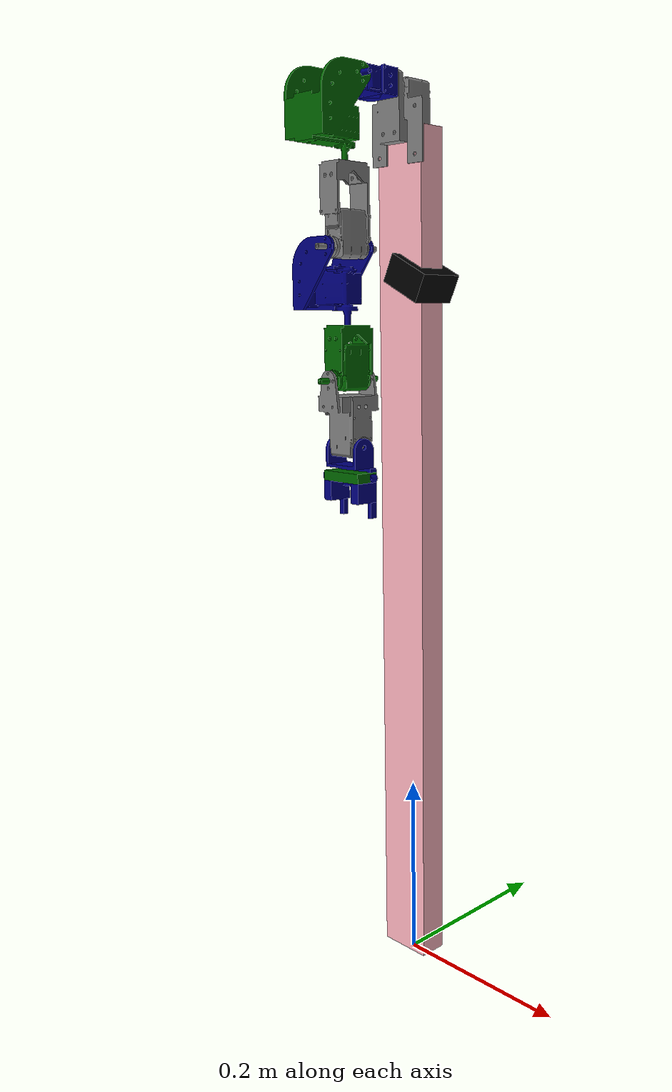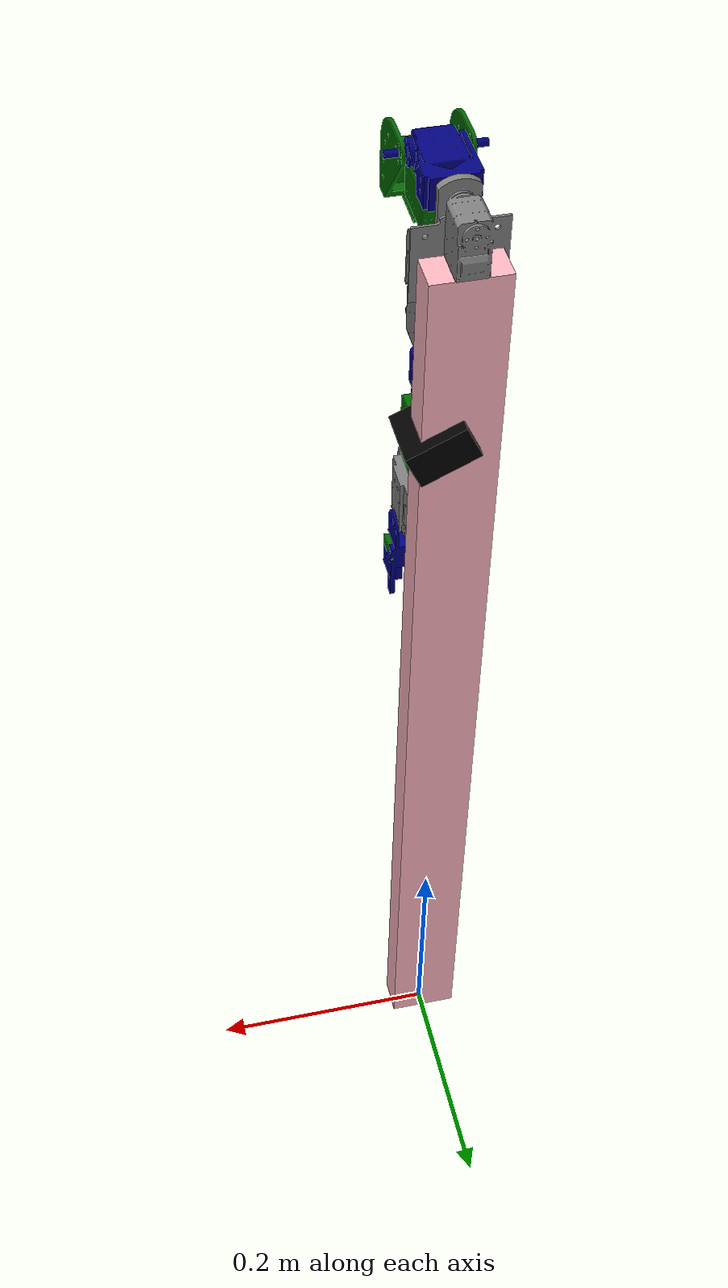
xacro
<?xml version="1.0" encoding="utf-8"?>

<robot
  name="poc_v2">

  <xacro:include filename="$(find poc_v2_arm)/urdf/camera_rgbd.xacro"/>

  <material name="grey">
      <color rgba="0.5 0.5 0.5 1" />
  </material>

  <material name="blue">
      <color rgba="0 0 0.5 1" />
  </material>

  <material name="green">
      <color rgba="0 0.4 0 1" />
  </material>

  <!-- Torso / base box -->
  <link name="torso_link">
    <inertial>
      <origin xyz="0 0 0.45" rpy="0 0 0"/>
      <mass value="25"/>
      <inertia
        ixx="0.2" ixy="0.0" ixz="0.0"
        iyy="0.2" iyz="0.0"
        izz="0.2"/>
    </inertial>

    <visual>
      <origin xyz="0 0 0.45" rpy="0 0 0"/>
      <geometry>
        <!-- size = X Y Z -->
        <box size="0.06 0.03 0.89"/>
      </geometry>
      <material name="torso_color">
        <color rgba="1 0.71 0.75 1"/>
      </material>
    </visual>

    <collision>
      <origin xyz="0 0 0.45" rpy="0 0 0"/>
      <geometry>
        <box size="0.06 0.03 0.89"/>
      </geometry>
    </collision>
  </link>

  <xacro:rgbd_camera
    parent="torso_link"
    xyz="0.015 0 0.75"
    rpy="0 0.45 0"/>

  <link
    name="shoulder_base_link">
    <inertial>
      <origin
        xyz="9.7487E-05 -0.0077102 -0.018086"
        rpy="0 0 0" />
      <mass
        value="0.065158" />
      <inertia
        ixx="1.3277E-05"
        ixy="3.3229E-10"
        ixz="4.3851E-09"
        iyy="1.8778E-05"
        iyz="2.5265E-07"
        izz="7.015E-06" />
    </inertial>
    <visual>
      <origin
        xyz="0 0 0"
        rpy="0 0 0" />
      <geometry>
        <mesh
          filename="package://poc_v2/meshes/shoulder_base_link.STL" />
      </geometry>
      <material name="grey"/>
    </visual>
    <collision>
      <origin
        xyz="0 0 0"
        rpy="0 0 0" />
      <geometry>
        <mesh
          filename="package://poc_v2/meshes/shoulder_base_link.STL" />
      </geometry>
    </collision>
  </link>

  <!-- torso -> shoulder_base_link fixed -->
  <joint name="torso_to_shoulder_base" type="fixed">
    <parent link="torso_link"/>
    <child link="shoulder_base_link"/>
    <!-- adjust this offset to place your arm on top of torso -->
    <origin xyz="0 0 0.93" rpy="0 0 0"/>
  </joint>

  <link
    name="shoulder_pitch_link">
    <inertial>
      <origin
        xyz="-4.3944E-05 -0.027448 -0.00011001"
        rpy="0 0 0" />
      <mass
        value="0.058226" />
      <inertia
        ixx="9.1701E-06"
        ixy="4.611E-09"
        ixz="-3.6339E-10"
        iyy="4.5864E-06"
        iyz="-1.102E-09"
        izz="8.3506E-06" />
    </inertial>
    <visual>
      <origin
        xyz="0 0 0"
        rpy="0 0 0" />
      <geometry>
        <mesh
          filename="package://poc_v2/meshes/shoulder_pitch_link.STL" />
      </geometry>
      <material name="blue"/>
    </visual>
    <collision>
      <origin
        xyz="0 0 0"
        rpy="0 0 0" />
      <geometry>
        <mesh
          filename="package://poc_v2/meshes/shoulder_pitch_link.STL" />
      </geometry>
    </collision>
  </link>
  <joint
    name="shoulder_pitch_joint"
    type="revolute">
    <origin
      xyz="0 -0.039425 0"
      rpy="0 0 0" />
    <parent
      link="shoulder_base_link" />
    <child
      link="shoulder_pitch_link" />
    <axis
      xyz="0 -1 0" />
    <limit
      lower="-1.5708"
      upper="1.5708"
      effort="3"
      velocity="4.7124" />
  </joint>
  <link
    name="shoulder_yaw_link">
    <inertial>
      <origin
        xyz="4.1777E-05 -0.022349 -0.037122"
        rpy="0 0 0" />
      <mass
        value="0.07816" />
      <inertia
        ixx="1.7538E-05"
        ixy="1.1171E-09"
        ixz="-6.0564E-10"
        iyy="1.2384E-05"
        iyz="-2.1123E-06"
        izz="1.5499E-05" />
    </inertial>
    <visual>
      <origin
        xyz="0 0 0"
        rpy="0 0 0" />
      <geometry>
        <mesh
          filename="package://poc_v2/meshes/shoulder_yaw_link.STL" />
      </geometry>
      <material name="green"/>
    </visual>
    <collision>
      <origin
        xyz="0 0 0"
        rpy="0 0 0" />
      <geometry>
        <mesh
          filename="package://poc_v2/meshes/shoulder_yaw_link.STL" />
      </geometry>
    </collision>
  </link>
  <joint
    name="shoulder_yaw_joint"
    type="revolute">
    <origin
      xyz="0 -0.047424 0"
      rpy="0 0 0" />
    <parent
      link="shoulder_pitch_link" />
    <child
      link="shoulder_yaw_link" />
    <axis
      xyz="-1 0 0" />
    <limit
      lower="-1.5708"
      upper="1.5708"
      effort="3"
      velocity="4.7124" />
  </joint>
  <link
    name="shoulder_roll_link">
    <inertial>
      <origin
        xyz="0.00010503 -6.0033E-06 -0.046163"
        rpy="0 0 0" />
      <mass
        value="0.062029" />
      <inertia
        ixx="1.0247E-05"
        ixy="-7.3826E-10"
        ixz="1.2386E-09"
        iyy="1.1268E-05"
        iyz="-4.5936E-09"
        izz="4.7933E-06" />
    </inertial>
    <visual>
      <origin
        xyz="0 0 0"
        rpy="0 0 0" />
      <geometry>
        <mesh
          filename="package://poc_v2/meshes/shoulder_roll_link.STL" />
      </geometry>
      <material name="grey"/>
    </visual>
    <collision>
      <origin
        xyz="0 0 0"
        rpy="0 0 0" />
      <geometry>
        <mesh
          filename="package://poc_v2/meshes/shoulder_roll_link.STL" />
      </geometry>
    </collision>
  </link>
  <joint
    name="shoulder_roll_joint"
    type="revolute">
    <origin
      xyz="0.000125 0 -0.08105"
      rpy="0 0 0" />
    <parent
      link="shoulder_yaw_link" />
    <child
      link="shoulder_roll_link" />
    <axis
      xyz="0 0 -1" />
    <limit
      lower="-3.1416"
      upper="3.1416"
      effort="3"
      velocity="4.7124" />
  </joint>
  <link
    name="elbow_pitch_link">
    <inertial>
      <origin
        xyz="-0.022349 -4.1658E-05 -0.03471"
        rpy="0 0 0" />
      <mass
        value="0.07816" />
      <inertia
        ixx="1.2384E-05"
        ixy="-1.0321E-09"
        ixz="-2.112E-06"
        iyy="1.7538E-05"
        iyz="6.7704E-10"
        izz="1.5499E-05" />
    </inertial>
    <visual>
      <origin
        xyz="0 0 0"
        rpy="0 0 0" />
      <geometry>
        <mesh
          filename="package://poc_v2/meshes/elbow_pitch_link.STL" />
      </geometry>
      <material name="blue"/>
    </visual>
    <collision>
      <origin
        xyz="0 0 0"
        rpy="0 0 0" />
      <geometry>
        <mesh
          filename="package://poc_v2/meshes/elbow_pitch_link.STL" />
      </geometry>
    </collision>
  </link>
  <joint
    name="elbow_pitch_joint"
    type="revolute">
    <origin
      xyz="0 0 -0.072424"
      rpy="0 0 0" />
    <parent
      link="shoulder_roll_link" />
    <child
      link="elbow_pitch_link" />
    <axis
      xyz="0 1 0" />
    <limit
      lower="-1.5708"
      upper="1.5708"
      effort="3"
      velocity="4.7124" />
  </joint>
  <link
    name="wrist_roll_link">
    <inertial>
      <origin
        xyz="-0.0001094 0.00049455 -0.027472"
        rpy="0 0 0" />
      <mass
        value="0.059835" />
      <inertia
        ixx="8.7489E-06"
        ixy="-2.3214E-10"
        ixz="-1.1318E-09"
        iyy="9.6573E-06"
        iyz="4.6966E-09"
        izz="4.6776E-06" />
    </inertial>
    <visual>
      <origin
        xyz="0 0 0"
        rpy="0 0 0" />
      <geometry>
        <mesh
          filename="package://poc_v2/meshes/wrist_roll_link.STL" />
      </geometry>
      <material name="green"/>
    </visual>
    <collision>
      <origin
        xyz="0 0 0"
        rpy="0 0 0" />
      <geometry>
        <mesh
          filename="package://poc_v2/meshes/wrist_roll_link.STL" />
      </geometry>
    </collision>
  </link>
  <joint
    name="wrist_roll_joint"
    type="revolute">
    <origin
      xyz="0 -0.000125 -0.07805"
      rpy="0 0 0" />
    <parent
      link="elbow_pitch_link" />
    <child
      link="wrist_roll_link" />
    <axis
      xyz="0 0 -1" />
    <limit
      lower="-3.1416"
      upper="3.1416"
      effort="3"
      velocity="4.7124" />
  </joint>
  <link
    name="wrist_pitch_link">
    <inertial>
      <origin
        xyz="-1.2164E-05 -0.00021517 -0.040822"
        rpy="0 0 0" />
      <mass
        value="0.065136" />
      <inertia
        ixx="1.2184E-05"
        ixy="3.7721E-10"
        ixz="-3.5858E-09"
        iyy="9.7713E-06"
        iyz="-1.0653E-09"
        izz="7.7058E-06" />
    </inertial>
    <visual>
      <origin
        xyz="0 0 0"
        rpy="0 0 0" />
      <geometry>
        <mesh
          filename="package://poc_v2/meshes/wrist_pitch_link.STL" />
      </geometry>
      <material name="grey"/>
    </visual>
    <collision>
      <origin
        xyz="0 0 0"
        rpy="0 0 0" />
      <geometry>
        <mesh
          filename="package://poc_v2/meshes/wrist_pitch_link.STL" />
      </geometry>
    </collision>
  </link>
  <joint
    name="wrist_pitch_joint"
    type="revolute">
    <origin
      xyz="0 0 -0.047424"
      rpy="0 0 0" />
    <parent
      link="wrist_roll_link" />
    <child
      link="wrist_pitch_link" />
    <axis
      xyz="0 -1 0" />
    <limit
      lower="-1.5708"
      upper="1.5708"
      effort="3"
      velocity="4.7124" />
  </joint>
  <link
    name="wrist_yaw_link">
    <inertial>
      <origin
        xyz="-0.00134389225503382 0.00410515462928857 -0.0264402444455359"
        rpy="0 0 0" />
      <mass
        value="0.0153733484376505" />
      <inertia
        ixx="2.23369482968237E-06"
        ixy="-6.06138545788461E-10"
        ixz="3.24772205878924E-07"
        iyy="4.98261144688796E-06"
        iyz="4.19349180435978E-08"
        izz="3.59994172004044E-06" />
    </inertial>
    <visual>
      <origin
        xyz="0 0 0"
        rpy="0 0 0" />
      <geometry>
        <mesh
          filename="package://poc_v2/meshes/wrist_yaw_link.STL" />
      </geometry>
      <material name="blue"/>
    </visual>
    <collision>
      <origin
        xyz="0 0 0"
        rpy="0 0 0" />
      <geometry>
        <mesh
          filename="package://poc_v2/meshes/wrist_yaw_link.STL" />
      </geometry>
    </collision>
  </link>
  <joint
    name="wrist_yaw_joint"
    type="revolute">
    <origin
      xyz="0 -0.000125 -0.064924"
      rpy="0 0 0" />
    <parent
      link="wrist_pitch_link" />
    <child
      link="wrist_yaw_link" />
    <axis
      xyz="-1 0 0" />
    <limit
      lower="-1.5708"
      upper="1.5708"
      effort="3"
      velocity="4.7124" />
  </joint>

  <link name="gripper_base_link">
      <inertial>
          <origin xyz="0 0 0.01" rpy="0 0 0"/>
          <mass value="0.05"/>
          <inertia ixx="2e-5" ixy="0.0" ixz="0.0"
                   iyy="2e-5" iyz="0.0"
                   izz="2e-5"/>
      </inertial>
      <visual>
          <geometry>
              <box size="0.05 0.025 0.01" />
          </geometry>
          <origin xyz="0 0 0.01" rpy="0 0 0" />
          <material name="green" />
      </visual>
      <collision>
          <geometry>
              <box size="0.06 0.04 0.01" />
          </geometry>
          <origin xyz="0 0 0.01" rpy="0 0 0" />
      </collision>
  </link>

  <joint name="gripper_base_joint" type="fixed">
      <parent link="wrist_yaw_link" />
      <child link="gripper_base_link" />
      <origin xyz="0 0 -0.02" rpy="3.14 0 0" />
  </joint>

  <link name="gripper_left_finger_link">
      <inertial>
          <origin xyz="0 0 0.04" rpy="0 0 0"/>
          <mass value="0.02"/>
          <inertia ixx="1e-5" ixy="0.0" ixz="0.0"
                   iyy="1e-5" iyz="0.0"
                   izz="1e-5"/>
      </inertial>
      <visual>
          <geometry>
              <box size="0.01 0.025 0.02" />
          </geometry>
          <origin xyz="0 0 0.04" rpy="0 0 0" />
          <material name="blue" />
      </visual>
      <collision>
          <geometry>
              <box size="0.01 0.04 0.02" />
          </geometry>
          <origin xyz="0 0 0.04" rpy="0 0 0" />
      </collision>
  </link>

  <link name="gripper_right_finger_link">
      <inertial>
          <origin xyz="0 0 0.04" rpy="0 0 0"/>
          <mass value="0.02"/>
          <inertia ixx="1e-5" ixy="0.0" ixz="0.0"
                   iyy="1e-5" iyz="0.0"
                   izz="1e-5"/>
      </inertial>
      <visual>
          <geometry>
              <box size="0.01 0.025 0.02" />
          </geometry>
          <origin xyz="0 0 0.04" rpy="0 0 0" />
          <material name="blue" />
      </visual>
      <collision>
          <geometry>
              <box size="0.01 0.04 0.02" />
          </geometry>
          <origin xyz="0 0 0.04" rpy="0 0 0" />
      </collision>
  </link>

  <joint name="gripper_left_finger_joint" type="prismatic">
      <parent link="gripper_base_link" />
      <child link="gripper_left_finger_link" />
      <origin xyz="-0.02 0 -0.015" rpy="0 0 0" />
      <axis xyz="1 0 0" />
      <limit effort="1000.0" velocity="1.0" lower="0.0" upper="0.015" />
  </joint>

  <joint name="gripper_right_finger_joint" type="prismatic">
      <parent link="gripper_base_link" />
      <child link="gripper_right_finger_link" />
      <origin xyz="0.02 0 -0.015" rpy="0 0 0" />
      <axis xyz="1 0 0" />
      <mimic joint="gripper_left_finger_joint" multiplier="-1.0" />
      <limit effort="1000.0" velocity="1.0" lower="-0.015" upper="0.0" />
  </joint>

  <gazebo reference="torso_link">
      <material>Gazebo/White</material>
  </gazebo>

  <gazebo reference="camera_link">
      <material>Gazebo/Black</material>
  </gazebo>

  <gazebo reference="shoulder_base_link">
      <material>Gazebo/Grey</material>
  </gazebo>

  <gazebo reference="shoulder_pitch_link">
      <material>Gazebo/Blue</material>
  </gazebo>

  <gazebo reference="shoulder_yaw_link">
      <material>Gazebo/Green</material>
  </gazebo>

  <gazebo reference="shoulder_roll_link">
      <material>Gazebo/Yellow</material>
  </gazebo>

  <gazebo reference="elbow_link">
      <material>Gazebo/Blue</material>
  </gazebo>

  <gazebo reference="wrist_yaw_link">
      <material>Gazebo/Green</material>
  </gazebo>

  <gazebo reference="wrist_pitch_link">
      <material>Gazebo/Grey</material>
  </gazebo>

  <gazebo reference="wrist_roll_link">
      <material>Gazebo/Red</material>
  </gazebo>

</robot>

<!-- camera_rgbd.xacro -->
<robot xmlns:xacro="http://www.ros.org/wiki/xacro">

  <xacro:macro name="rgbd_camera" params="parent xyz rpy">

    <!-- Materials -->
    <material name="kala">
      <color rgba="0 0 0 1"/>
    </material>

    <!-- Camera mounting link -->
    <link name="camera_link">
      <inertial>
        <origin xyz="0 0 0" rpy="0 0 0"/>
        <mass value="0.3"/>
        <inertia
          ixx="0.0005"
          iyy="0.0005"
          izz="0.0005"
          ixy="0" ixz="0" iyz="0"/>
      </inertial>

      <visual>
        <geometry>
          <box size="0.05 0.05 0.03"/>
        </geometry>
        <material name="kala"/>
      </visual>

      <collision>
        <geometry>
          <box size="0.05 0.05 0.03"/>
        </geometry>
      </collision>
    </link>

    <!-- Optical frame link -->
    <link name="camera_frame_link"/>

    <!-- Parent → camera_link -->
    <joint name="head_to_camera_link" type="fixed">
      <parent link="${parent}"/>
      <child link="camera_link"/>
      <origin xyz="${xyz}" rpy="${rpy}"/>
    </joint>

    <!-- camera_link → camera_frame_link (REP-103 optical frame) -->
    <joint name="camera_link_to_camera_frame_link" type="fixed">
      <parent link="camera_link"/>
      <child link="camera_frame_link"/>
      <origin xyz="0 0 0" rpy="-1.57 0 -1.57"/>
    </joint>

    <!-- Gazebo RGB-D sensor -->
    <xacro:if value="true">
      <gazebo reference="camera_link">
        <sensor name="camera" type="depth">
          <pose>0 0 0 0 0 0</pose>
          <visualize>true</visualize>
          <update_rate>5</update_rate>

          <camera>
            <horizontal_fov>2</horizontal_fov>
            <image>
              <format>R8G8B8</format>
              <width>640</width>
              <height>480</height>
            </image>
            <clip>
              <near>0.2</near>
              <far>5</far>
            </clip>
          </camera>

          <plugin name="depth_camera" filename="libgazebo_ros_camera.so">
            <!-- Optical frame -->
            <frame_name>camera_frame_link</frame_name>
          </plugin>
        </sensor>
      </gazebo>
    </xacro:if>

  </xacro:macro>

</robot>
